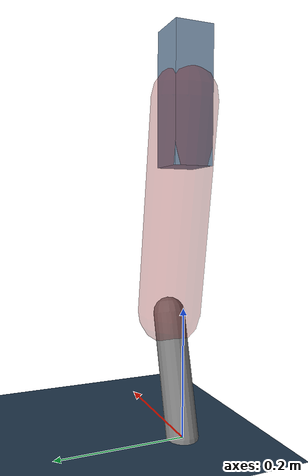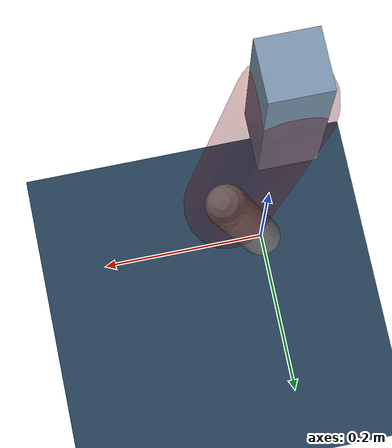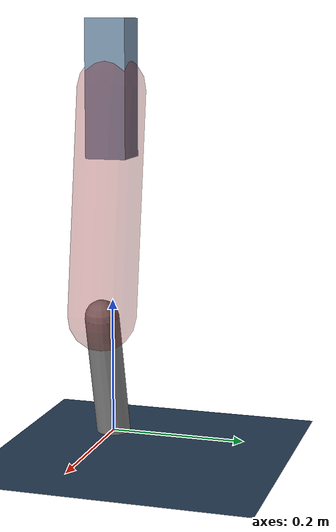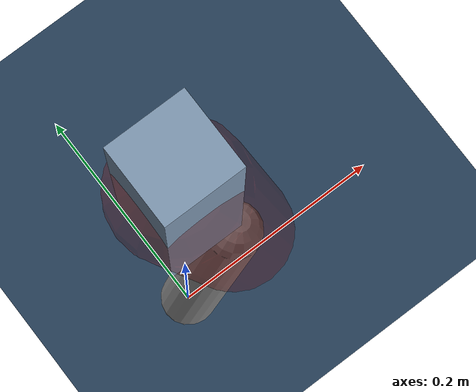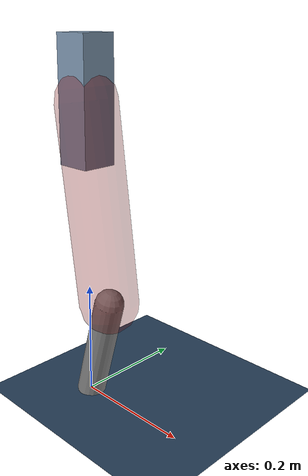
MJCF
<mujoco model="Hopper2D">
	<compiler inertiafromgeom="true" angle="radian" />
	<option timestep="0.001" integrator="implicit" cone="elliptic" solver="Newton" tolerance="1e-10" />

	<default>
		<geom contype="1" conaffinity="1" condim="3" friction="2 0.005 0.0001" solref="0.005 1" />
		<joint limited="true" damping="0.1" />
	</default>

	<asset>
		<texture name="skybox" type="skybox" builtin="gradient" rgb1=".4 .6 .8" rgb2="0 0 0" width="800" height="800" />
		<texture name="grid" type="2d" builtin="checker" rgb1=".1 .2 .3" rgb2=".2 .3 .4" width="300" height="300" mark="edge" markrgb=".2 .3 .4" />
		<material name="ground" texture="grid" texrepeat="1 1" texuniform="true" reflectance="0.1" />
		<material name="leg" rgba="0.5 0.6 0.7 1" />
	</asset>

	<worldbody>

		<geom name="floor" type="plane" size="5 5 0.25" material="ground" />

		<light directional="false" diffuse="0.8 0.8 0.8" specular="0.3 0.3 0.3" pos="0 0 2" dir="0 0 -1" />
		<light mode="targetbodycom" target="base" directional="false" diffuse="0.8 0.8 0.8" specular="0.3 0.3 0.3" pos="0 0 2" dir="0 0 -1" />

		<camera name="fixed" pos="0 -2 1" xyaxes="1 0 0 0 0 1" />
		<camera name="tracking" mode="trackcom" pos="0 -3 1" />

		<body name="root" pos="0 0 0.5118556563714065">
			<joint name="slide_x" type="slide" axis="1 0 0" range="-100 100" />
			<joint name="slide_z" type="slide" axis="0 0 1" range="0 10" />

			<body name="base" pos="0 0 0">
				<geom name="torso" type="box" size="0.03 0.03 0.1" mass="2.823" material="leg" />

				<body name="link1" pos="0 0 0" euler="0 1.4222718983229141 0">
					<joint type="hinge" axis="0 -1 0" pos="0 0 0" name="hinge1" limited="true" range="-3.14 3.14" stiffness="0" damping="0.1" />
					<geom name="thigh" type="capsule" fromto="0 0 0 0.3305703277108589 0 0" size="0.05" rgba="0.5 0 0 0.3" mass="1.072396917590405" />

					<body name="link2" pos="0.3305703277108589 0 0" euler="0 0.4071274830267122 0">
						<joint type="hinge" axis="0 -1 0" pos="0 0 0" name="hinge2" limited="true" range="-3.14 3.14" stiffness="0" damping="0.1" />
						<geom name="shank" type="capsule" fromto="0 0 0 0.1912853286605476 0 0" size="0.025" mass="0.39352826292843807" />

					</body>
				</body>
			</body>
		</body>
	</worldbody>

	<actuator>
		<motor name="torque1" joint="hinge1" ctrlrange="-119.56203531923386 119.56203531923386" ctrllimited="true" gear="1" />
		<motor name="torque2" joint="hinge2" ctrlrange="-53.018504316690006 53.018504316690006" ctrllimited="true" gear="1" />
	</actuator>
</mujoco>
